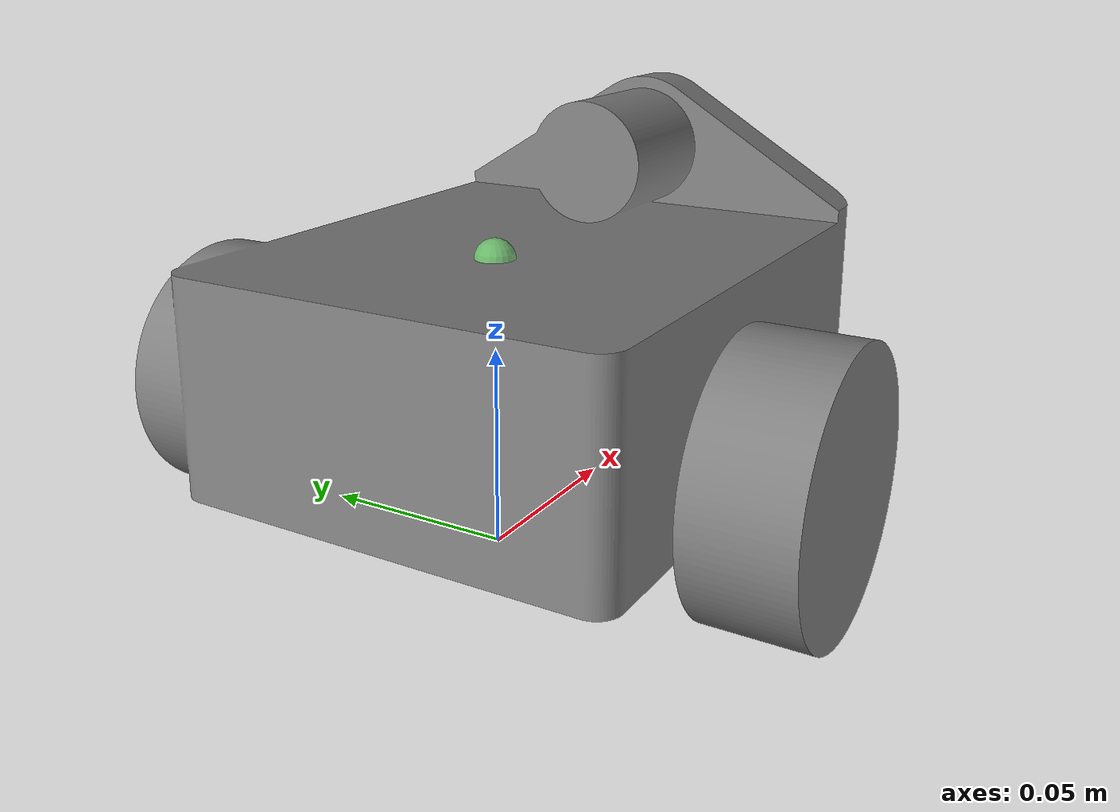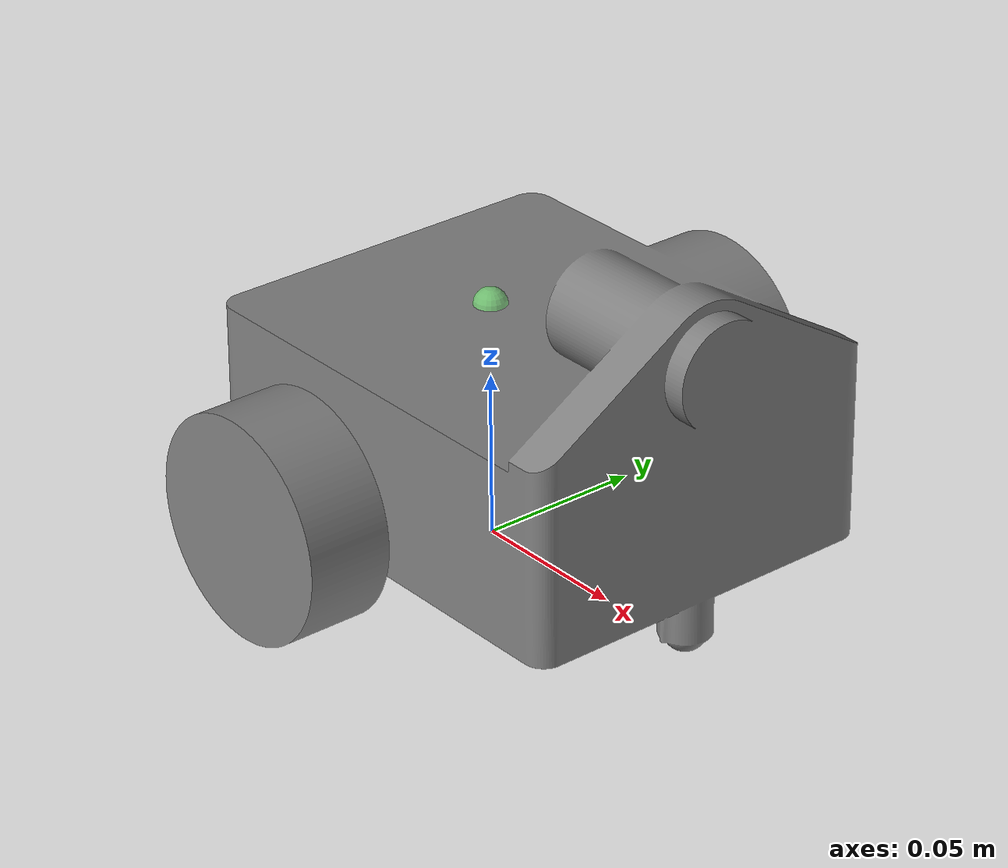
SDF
<?xml version='1.0'?>
<sdf version='1.7'>
    <model name='Traini' canonical_link="base_footprint">
        <plugin name='planar_move' filename='libgazebo_ros_planar_move.so'>
            <update_rate>100</update_rate>
            <publish_rate>50</publish_rate>

            <odometry_topic>ground_truth</odometry_topic>

            <ros>
                <remapping>odom:=ground_truth</remapping>
            </ros>

            <publish_odom>true</publish_odom>
            <publish_odom_tf>false</publish_odom_tf>

            <odometry_frame>map</odometry_frame>
            <robot_base_frame>base_footprint</robot_base_frame>

            <covariance_x>0.0001</covariance_x>
            <covariance_y>0.0001</covariance_y>
            <covariance_yaw>0.01</covariance_yaw>
        </plugin>

        <plugin name='noisy_odom' filename='libRosNoisyPlanarOdomPlugin.so'>
            <ros>
                <remapping>/noisy_odom/odom:=/odom</remapping>
            </ros>
            <publish_rate>40</publish_rate>

            <publish_odom>true</publish_odom>
            <publish_odom_tf>true</publish_odom_tf>

            <odometry_frame>odom</odometry_frame>
            <robot_base_frame>base_footprint</robot_base_frame>

            <velocity_noise_std_dev>0.1</velocity_noise_std_dev>

            <covariance_x>0.0001</covariance_x>
            <covariance_y>0.0001</covariance_y>
            <covariance_yaw>0.01</covariance_yaw>
        </plugin>

        <plugin name="light_control" filename="libRosLightControlPlugin.so">
            <light_id>light_link/indicator_light</light_id>
            <visual_name>indicator_light_visual</visual_name>
        </plugin>

        <link name="base_footprint">
            <kinematic>true</kinematic>
        </link>

        <link name='base_link'>
            <pose relative_to="base_footprint">0 0 0.0325 0 0 0</pose>
            <visual name='visual'>
                <pose>0 0 -0.0325 0 0 0</pose>
                <geometry>
                    <mesh>
                        <uri>model://traini/meshes/Trainiii.dae</uri>
                    </mesh>
                </geometry>
                <material>
                    <ambient>0.5 0.5 0.5 1</ambient>
                    <diffuse>0.5 0.5 0.5 1</diffuse>
                </material>
            </visual>
        </link>
        <joint name="base_link_joint" type="fixed">
            <parent>base_footprint</parent>
            <child>base_link</child>
        </joint>

        <link name="camera_link">
            <pose relative_to="base_link">0.1 0 0.055 0 0.3 0</pose>
            <sensor name="camera" type="camera">
                <update_rate>10</update_rate>
                <camera name="camera">
                    <horizontal_fov>1.085595</horizontal_fov>
                    <image>
                        <width>640</width>
                        <height>480</height>
                        <format>R8G8B8</format>
                    </image>
                </camera>
                <plugin name="camera_controller" filename="libgazebo_ros_camera.so">
                    <frame_name>camera_link_optical</frame_name>
                </plugin>
            </sensor>
        </link>
        <joint name="camera_joint" type="fixed">
            <parent>base_link</parent>
            <child>camera_link</child>
        </joint>

        <link name="imu_link">
            <pose relative_to="base_link">0 0 0 0 0 0</pose>
            <sensor name="imu" type="imu">
                <always_on>true</always_on>
                <update_rate>30</update_rate>
                <plugin name="imu_plugin" filename="libgazebo_ros_imu_sensor.so">
                    <ros>
                        <namespace>/imu</namespace>
                        <remapping>~/out:=data</remapping>
                    </ros>
                    <initial_orientation_as_reference>false</initial_orientation_as_reference>
                </plugin>
            </sensor>
        </link>
        <joint name="imu_joint" type="fixed">
            <parent>base_link</parent>
            <child>imu_link</child>
        </joint>

        <link name="light_link">
            <pose relative_to="base_link">0 0 0.04 0 0 0</pose>
            <light name="indicator_light" type="point">
                <diffuse>0 1 0 1</diffuse>
                <specular>0 1 0 1</specular>
                <attenuation>
                    <constant>1</constant>
                </attenuation>
                <visualize>false</visualize>
            </light>
            <visual name="indicator_light_visual">
                <geometry>
                    <sphere>
                        <radius>0.005</radius>
                    </sphere>
                </geometry>
                <transparency>0.4</transparency>
                <material>
                    <ambient>0.5 1 0.5 1</ambient>
                    <diffuse>0.5 1 0.5 1</diffuse>
                    <specular>0 0 0 0</specular>
                    <emissive>0.5 1 0.5 1</emissive>
                </material>
                <plugin name="hide_indicator_light_gizmo" filename="libHideLightVisualsPlugin.so">
                    <light>Traini::light_link::indicator_light</light>
                </plugin>
            </visual>
        </link>
        <joint name="light_joint" type="fixed">
            <parent>base_link</parent>
            <child>light_link</child>
        </joint>
    </model>
</sdf>
